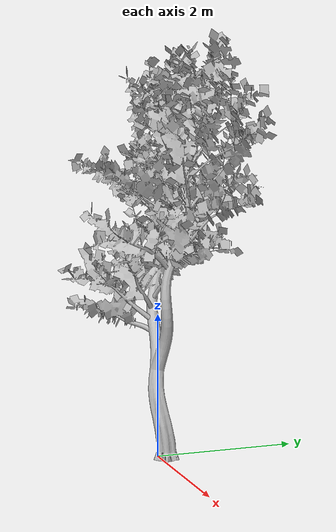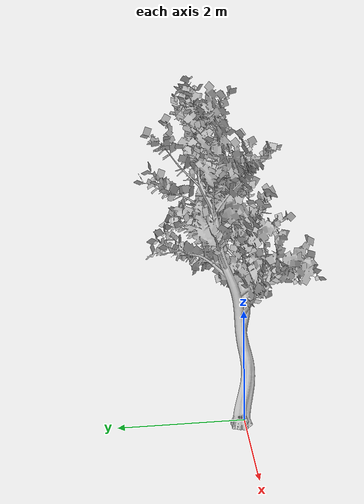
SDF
<?xml version="1.0" ?>
<sdf version="1.7">
  <model name="benchmark_new_tree_1">
    <static>true</static>
    <link name="link">
      <!-- Physical trunk used by LiDAR; DAP=0.230 m. -->
      <collision name="collision_trunk">
        <pose>0 0 1.600000 0 0 0</pose>
        <geometry><cylinder><radius>0.115000</radius><length>3.200000</length></cylinder></geometry>
      </collision>
      <!-- Crown collision stays above the 2 m lawnmower flight plane. -->
      <collision name="collision_crown">
        <pose>0 0 4.200000 0 0 0</pose>
        <geometry><sphere><radius>1.800000</radius></sphere></geometry>
      </collision>
      <visual name="source_mesh_visual">
        <pose>0.123000 0.234000 0.000000 0.000000000 0 0</pose>
        <geometry>
          <mesh>
            <uri>model://new_tree_1/meshes/new_tree_1.obj</uri>
            <scale>0.500000 0.500000 0.550000</scale>
          </mesh>
        </geometry>
      </visual>
    </link>
  </model>
</sdf>
